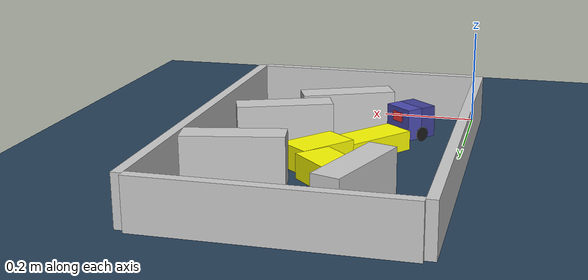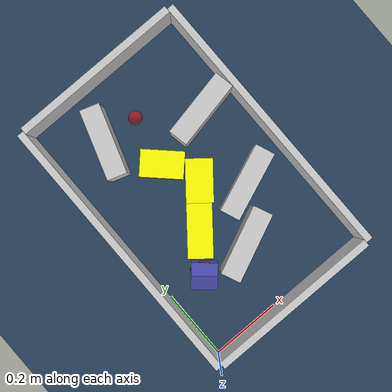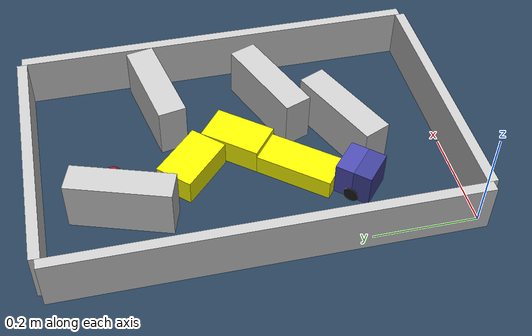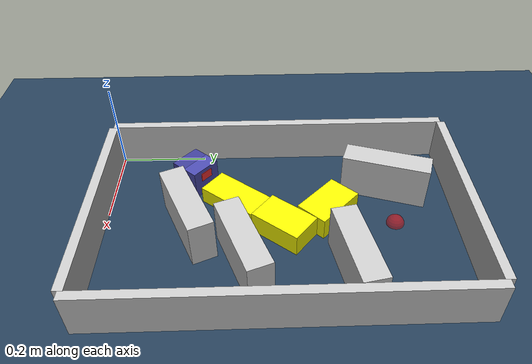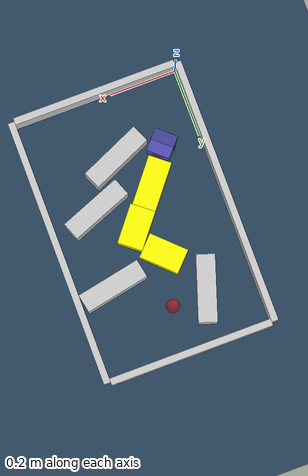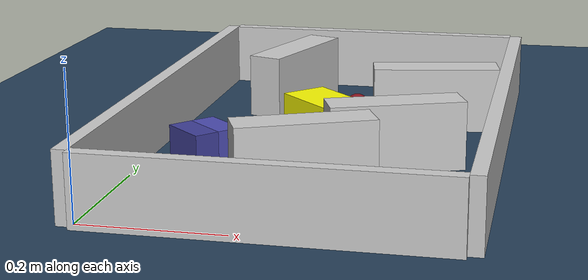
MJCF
<?xml version='1.0' encoding='utf-8'?>
<mujoco model="real_buildable">
  <compiler angle="degree" />
  <option timestep="0.002" integrator="implicitfast" iterations="100" cone="elliptic" />
  <default>
    <geom density="1" />
  </default>
  <asset>
    <texture builtin="gradient" height="3072" rgb1="0.3 0.5 0.7" rgb2="0 0 0" type="skybox" width="512" />
    <texture builtin="checker" height="300" mark="edge" markrgb="0.8 0.8 0.8" name="groundplane" rgb1="0.2 0.3 0.4" rgb2="0.1 0.2 0.3" type="2d" width="300" />
    <material name="groundplane" reflectance="0.2" texrepeat="5 5" texture="groundplane" texuniform="true" />
  </asset>
  <worldbody>
    <light dir="0 0 -1" directional="true" pos="0 0 1.5" />
    <geom name="floor" type="plane" condim="4" friction="0.5 0.005 0.001" material="groundplane" size="0 0 0.05" />
    <body name="walls">
      <geom name="wall_boundary_left" type="box" condim="4" friction="1.0 0.005 0.0001" rgba="0.8 0.8 0.8 1" pos="-0.010000 0.387500 0.050000" euler="0 0 0.000000" size="0.010000 0.397500 0.050000" />
      <geom name="wall_boundary_right" type="box" condim="4" friction="1.0 0.005 0.0001" rgba="0.8 0.8 0.8 1" pos="0.500000 0.387500 0.050000" euler="0 0 0.000000" size="0.010000 0.397500 0.050000" />
      <geom name="wall_boundary_bottom" type="box" condim="4" friction="1.0 0.005 0.0001" rgba="0.8 0.8 0.8 1" pos="0.245000 -0.010000 0.050000" euler="0 0 0.000000" size="0.245000 0.010000 0.050000" />
      <geom name="wall_boundary_top" type="box" condim="4" friction="1.0 0.005 0.0001" rgba="0.8 0.8 0.8 1" pos="0.245000 0.785000 0.050000" euler="0 0 0.000000" size="0.245000 0.010000 0.050000" />
      <geom name="wall_inner_1" type="box" condim="4" friction="1.0 0.005 0.0001" rgba="0.8 0.8 0.8 1" pos="0.357146 0.307641 0.050000" euler="0 0 21.353707" size="0.097500 0.027500 0.050000" />
      <geom name="wall_inner_2" type="box" condim="4" friction="1.0 0.005 0.0001" rgba="0.8 0.8 0.8 1" pos="0.251814 0.186849 0.050000" euler="0 0 23.867859" size="0.097500 0.027500 0.050000" />
      <geom name="wall_inner_3" type="box" condim="4" friction="1.0 0.005 0.0001" rgba="0.8 0.8 0.8 1" pos="0.389000 0.531000 0.050000" euler="0 0 11.200000" size="0.097500 0.027500 0.050000" />
      <geom name="wall_inner_4" type="box" condim="4" friction="1.0 0.005 0.0001" rgba="0.8 0.8 0.8 1" pos="0.140000 0.630000 0.050000" euler="0 0 71.700000" size="0.097500 0.027500 0.050000" />
    </body>
    <body name="car" pos="0.11301963215353819 0.19351551071909442 0.01" quat="0.91235660896138937 0 0 0.40939640702438324">
      <freejoint name="car_freejoint" />
      <inertial pos="0 0 0.0375" mass="0.35" diaginertia="0.000266 0.000266 0.000286" />
      <geom name="front_chassis_collision" type="box" pos="0.0175 0 0.0375" size="0.0175 0.035 0.0325" rgba="0.3 0.3 0.7 1" />
      <geom name="rear_chassis_collision" type="box" pos="-0.0175 0 0.0375" size="0.0175 0.035 0.0325" rgba="0.25 0.25 0.6 1" />
      <geom name="front_marker" type="box" pos="0.034 0 0.0505" size="0.002 0.015 0.01" rgba="1 0.2 0.2 1" contype="0" conaffinity="0" />
      <body name="rear_support_body" pos="-0.03 0 0.0025">
        <joint name="rear_caster_joint" type="ball" damping="0.0001" />
        <inertial pos="0 0 0" mass="0.025" diaginertia="0.000001 0.000001 0.000001" />
        <geom name="rear_support" type="sphere" pos="0 0 0" size="0.0025" friction="0 0 0" rgba="0.7 0.1 0.1 1" />
      </body>
      <body name="front_support_body" pos="0.03 0 0.0025">
        <joint name="front_caster_joint" type="ball" damping="0.0001" />
        <inertial pos="0 0 0" mass="0.025" diaginertia="0.000001 0.000001 0.000001" />
        <geom name="front_support" type="sphere" pos="0 0 0" size="0.0025" friction="0 0 0" rgba="0.1 0.7 0.1 1" />
      </body>
      <body name="left_wheel" pos="0 0.0375 0.015">
        <inertial pos="0 0 0" mass="0.05" diaginertia="0.000003 0.000006 0.000003" />
        <joint name="left_wheel_joint" type="hinge" axis="0 1 0" damping="0.01" armature="0.0001" />
        <geom name="left_wheel_collision" type="cylinder" size="0.015 0.0005" euler="90 0 0" rgba="0.1 0.1 0.1 1" />
      </body>
      <body name="right_wheel" pos="0 -0.0375 0.015">
        <inertial pos="0 0 0" mass="0.05" diaginertia="0.000003 0.000006 0.000003" />
        <joint name="right_wheel_joint" type="hinge" axis="0 1 0" damping="0.01" armature="0.0001" />
        <geom name="right_wheel_collision" type="cylinder" size="0.015 0.0005" euler="90 0 0" rgba="0.1 0.1 0.1 1" />
      </body>
    </body>
    <body name="obstacle_0_movable">
      <geom name="obstacle_0_movable" condim="4" pos="0.17934708014136347 0.28863277838156209 0.02" friction="1 0.005 0.0001" rgba="1 1 0 1" size="0.035000 0.075000 0.020000" type="box" mass="0.1" quat="0.33206240856097297 0 0 0.94325741811060537" />
      <joint type="free" />
    </body>
    <body name="obstacle_1_movable">
      <geom name="obstacle_1_movable" condim="4" pos="0.21823228863128472 0.49102409574144495 0.025000000000000001" friction="1 0.005 0.0001" rgba="1 1 0 1" size="0.037500 0.060000 0.025000" type="box" mass="0.1" quat="0.92001674400992861 0 0 0.39187905116422028" />
      <joint type="free" />
    </body>
    <body name="obstacle_2_movable">
      <geom name="obstacle_2_movable" condim="4" pos="0.26583277651745069 0.39237750127417226 0.025000000000000001" friction="1 0.005 0.0001" rgba="1 1 0 1" size="0.037500 0.060000 0.025000" type="box" mass="0.1" quat="0.33218314724322268 0 0 0.94321490482688375" />
      <joint type="free" />
    </body>
    <site name="goal" type="sphere" pos="0.245000 0.640000 0.0" size="0.02" rgba="1 0 0 0.5" />
  </worldbody>
  <actuator>
    <velocity name="left_wheel_drive" joint="left_wheel_joint" ctrlrange="-25 25" kv="0.75" forcerange="-0.5 0.5" />
    <velocity name="right_wheel_drive" joint="right_wheel_joint" ctrlrange="-25 25" kv="0.75" forcerange="-0.5 0.5" />
  </actuator>
</mujoco>
